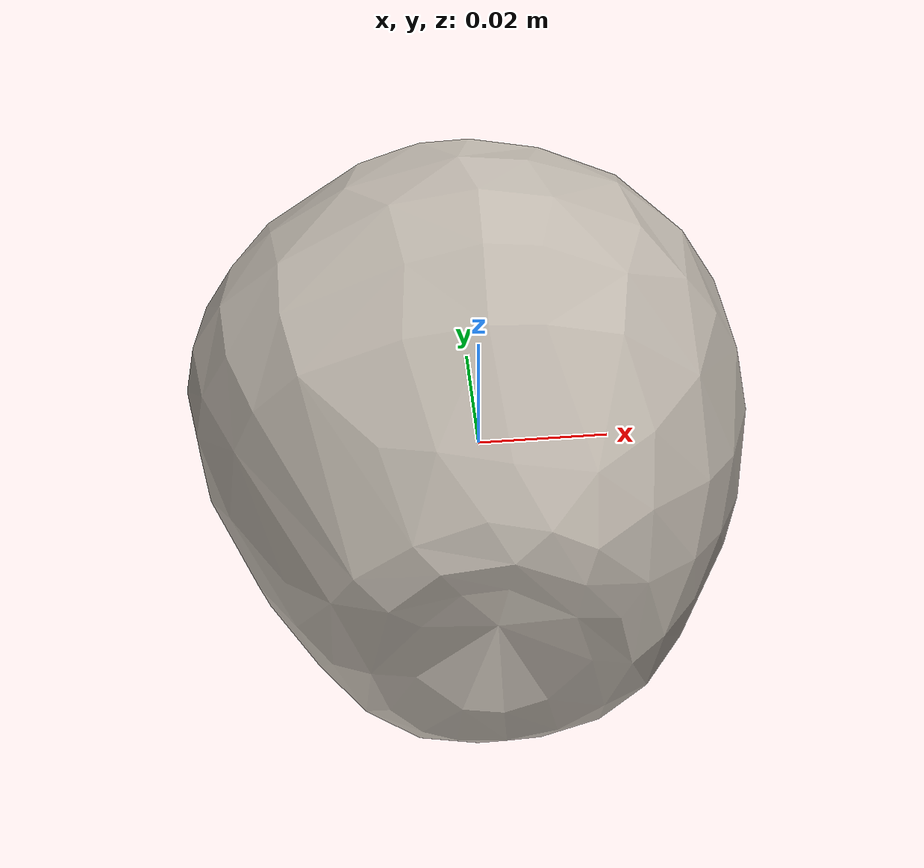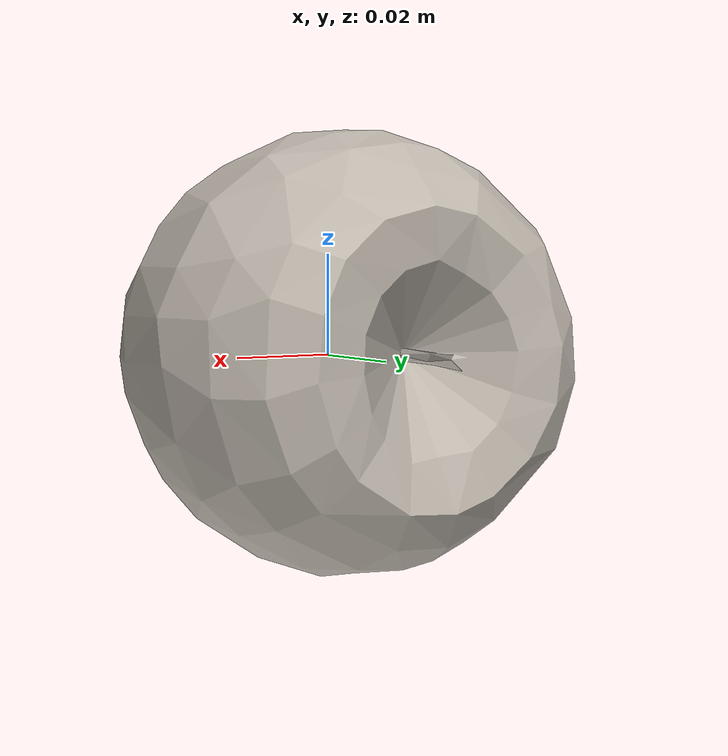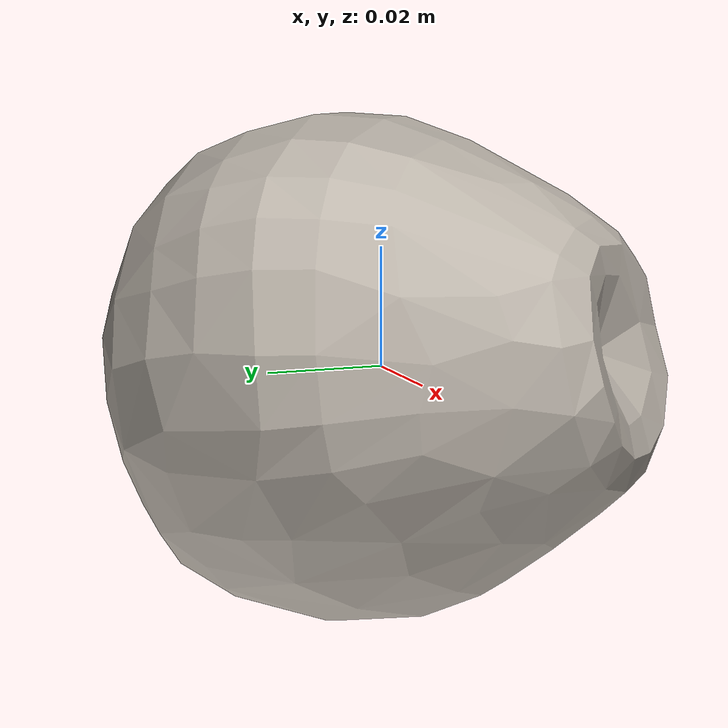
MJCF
<mujoco model="Apple_21">
  <compiler autolimits="true" boundmass="0.01" angle="radian"/>
  <default>
    <default class="/">
      <default class="__VISUAL_MJT__">
        <geom contype="0" conaffinity="0" group="0"/>
      </default>
      <default class="__STRUCTURAL_MJT__">
        <geom contype="8" conaffinity="15" group="4" friction="0.90000000000000002 0.90000000000000002 0.001" solref="0.025000000000000001 1" solimp="0.998 0.998 0.001"/>
      </default>
      <default class="__DYNAMIC_MJT__">
        <geom contype="1" conaffinity="15" group="4" friction="0.90000000000000002 0.90000000000000002 0.001" solref="0.025000000000000001 1" solimp="0.998 0.998 0.001"/>
      </default>
    </default>
  </default>
  <asset>
    <texture name="Apple2_Mat3" type="2d" file="Apple2_AlbedoTransparency3.png"/>
    <material name="material_Apple2_Mat3" class="/" texture="Apple2_Mat3" specular="0.5" shininess="0.5" rgba="1 1 1 1"/>
    <mesh name="Apple_21_apple_b6" class="/" file="Apple_21_apple_b6/Apple_21_apple_b6.obj" scale="1 1 1"/>
  </asset>
  <worldbody>
    <body name="Apple_21">
      <joint name="Apple_21_free" class="/" type="free" pos="0 0 0" axis="0 0 1" stiffness="0" range="0 0" armature="0" damping="0.10000000000000001" frictionloss="0"/>
      <body name="Apple_21_apple_b6" pos="-0 0.0077099999999999998 0" quat="1 0 0 0">
        <geom name="Apple_21_apple_b6" class="__VISUAL_MJT__" type="mesh" material="material_Apple2_Mat3" shellinertia="false" mesh="Apple_21_apple_b6"/>
        <geom name="Apple_21_PrimitiveCollider_0" class="__DYNAMIC_MJT__" type="capsule" size="0.044274710118770599 0.0035232454538345337" rgba="0 1 0 1" pos="-0 -0.0077115222811698914 0" quat="0.70710678118654757 0.70710678118654746 0 0"/>
      </body>
    </body>
  </worldbody>
</mujoco>
